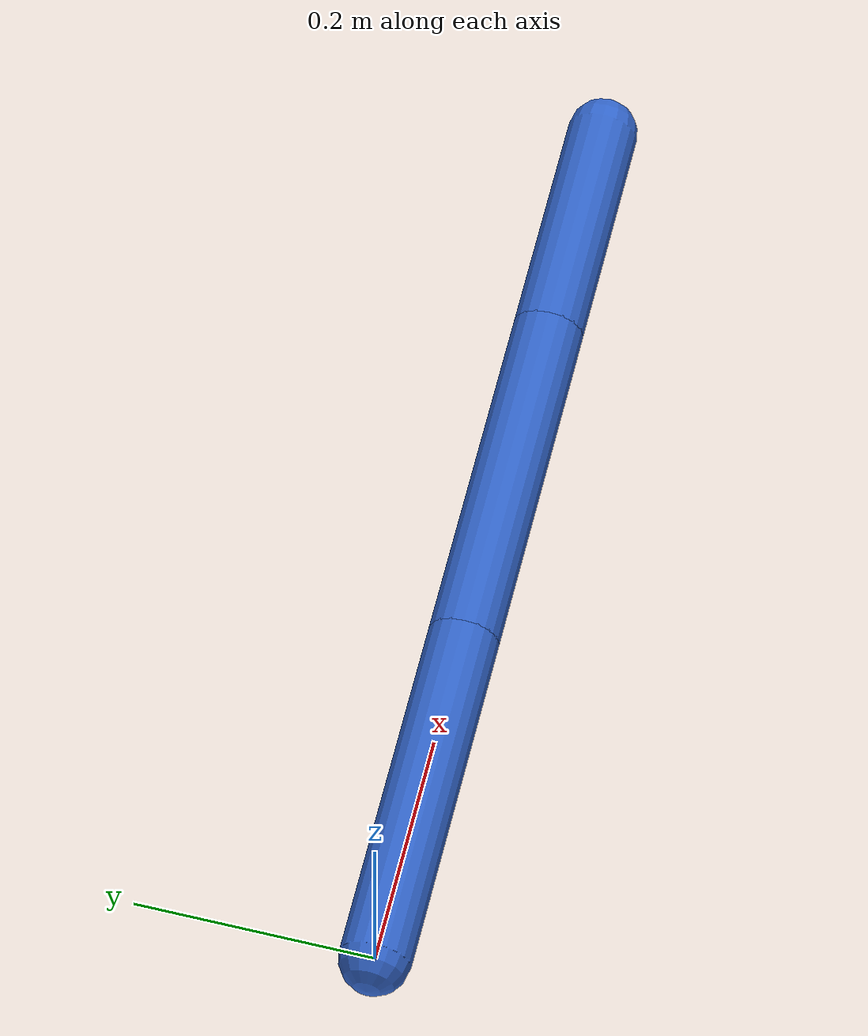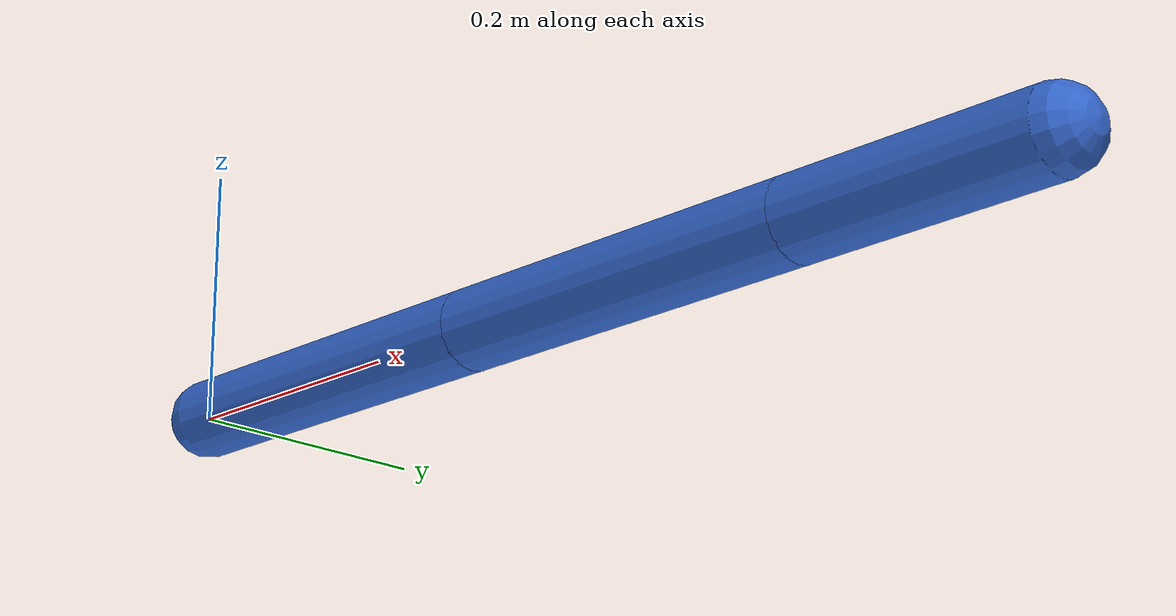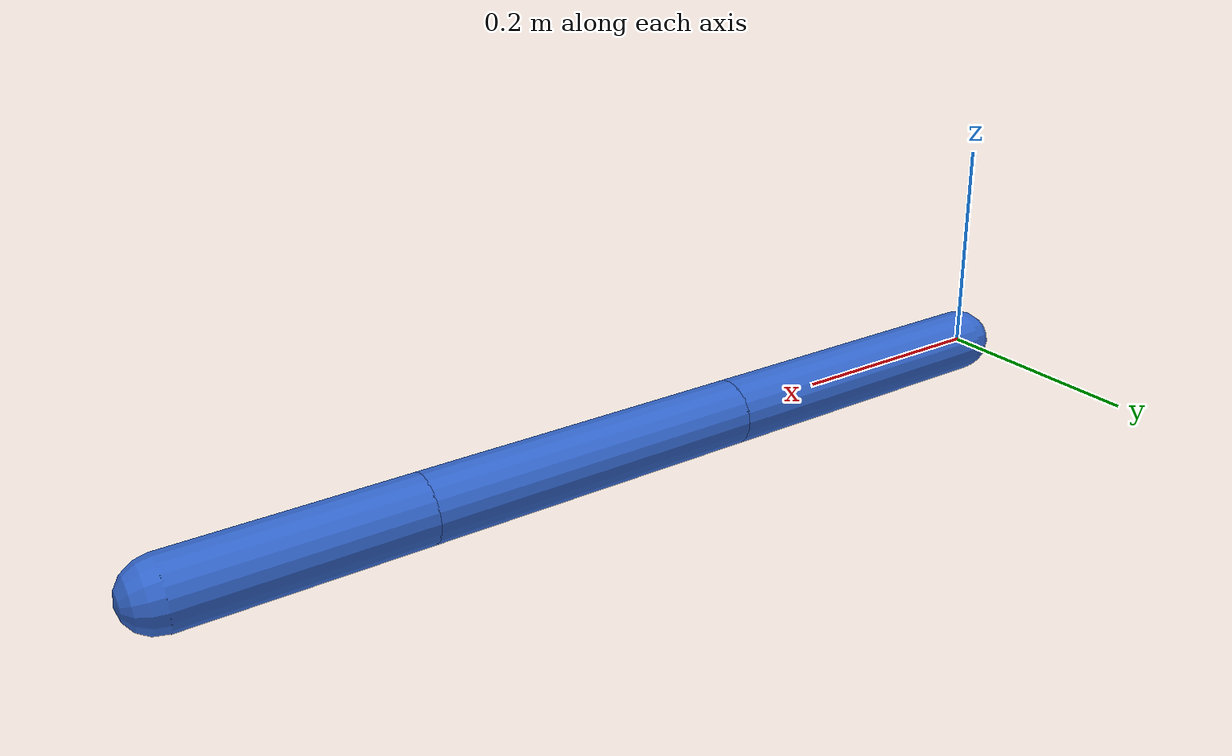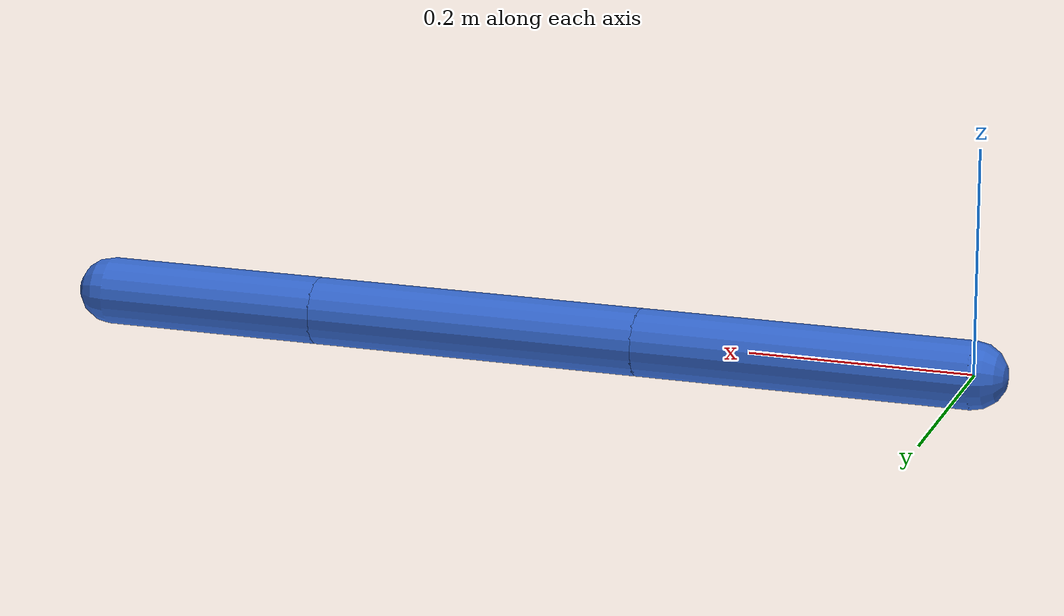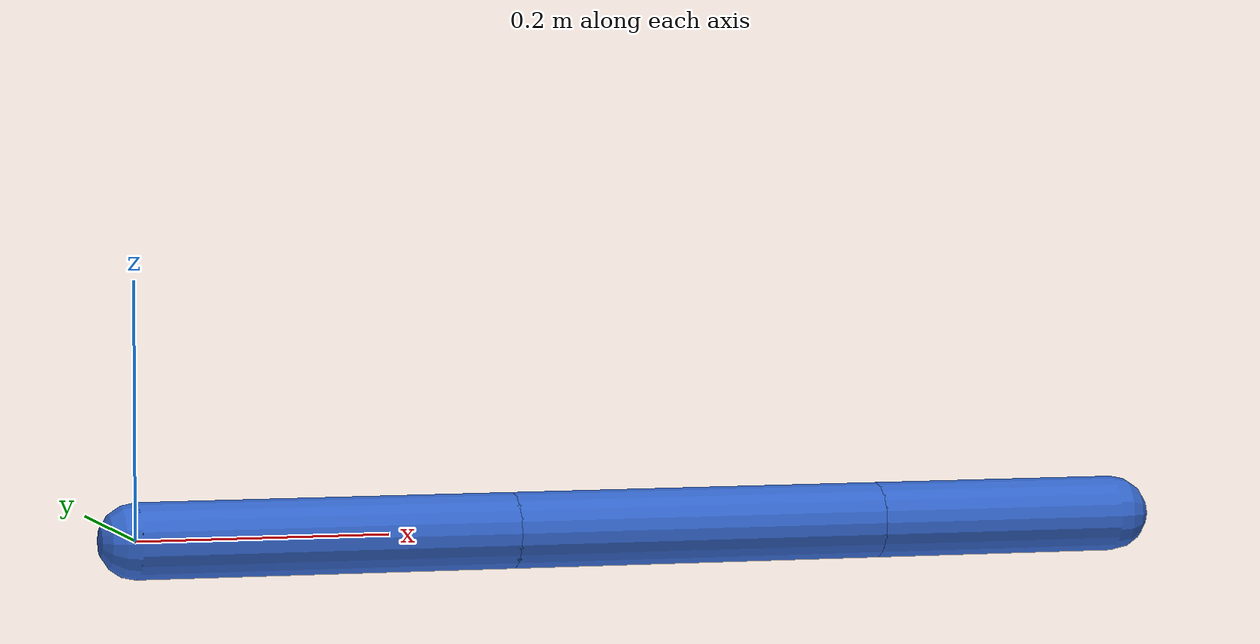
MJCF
<mujoco model="simple_3dof_arm">

  <!-- Keep degrees so ranges are intuitive -->
  <compiler angle="degree" inertiafromgeom="true"/>

  <option gravity="0 0 -9.81" timestep="0.01"/>

  <default>
    <!-- Generic link style -->
    <default class="link">
      <geom type="capsule" size="0.03" rgba="0.2 0.4 0.8 1"/>
    </default>

    <!-- Visual marker style -->
    <default class="marker">
      <geom type="sphere" size="0.02" rgba="1 0 0 1" contype="0" conaffinity="0"/>
    </default>
  </default>

  <worldbody>
    <!-- Just the arm; you’ll still add a Plane from Genesis -->
    <body name="base" pos="0 0 0">
      <!-- Joint 1: rotate around z at the base -->
      <body name="link1" pos="0 0 0">
        <joint name="joint1" type="hinge" axis="0 0 1" range="-90 90"/>

        <!-- Link 1: 0.3m capsule along +x -->
        <geom class="link" name="link1_geom" fromto="0 0 0 0.3 0 0"/>

        <!-- Joint 2: at the end of link1, also around z -->
        <body name="link2" pos="0.3 0 0">
          <joint name="joint2" type="hinge" axis="0 0 1" range="-90 90"/>

          <!-- Link 2: another 0.3m capsule -->
          <geom class="link" name="link2_geom" fromto="0 0 0 0.3 0 0"/>

          <!-- Joint 3: at the end of link2, also around z -->
          <body name="link3" pos="0.3 0 0">
            <joint name="joint3" type="hinge" axis="0 0 1" range="-90 90"/>

            <!-- Link 3: 0.2m capsule -->
            <geom class="link" name="link3_geom" fromto="0 0 0 0.2 0 0"/>

            <!-- End-effector body & visual marker -->
            <body name="hand" pos="0.2 0 0">
              <geom class="marker" name="ee_marker"/>
              <site name="ee_site" pos="0 0 0" size="0.01" rgba="1 0 0 1"/>
            </body>
          </body>
        </body>
      </body>
    </body>
  </worldbody>

  <!-- Simple position actuators for each joint -->
  <actuator>
    <position name="j1_pos" joint="joint1" kp="50"/>
    <position name="j2_pos" joint="joint2" kp="50"/>
    <position name="j3_pos" joint="joint3" kp="50"/>
  </actuator>

</mujoco>
